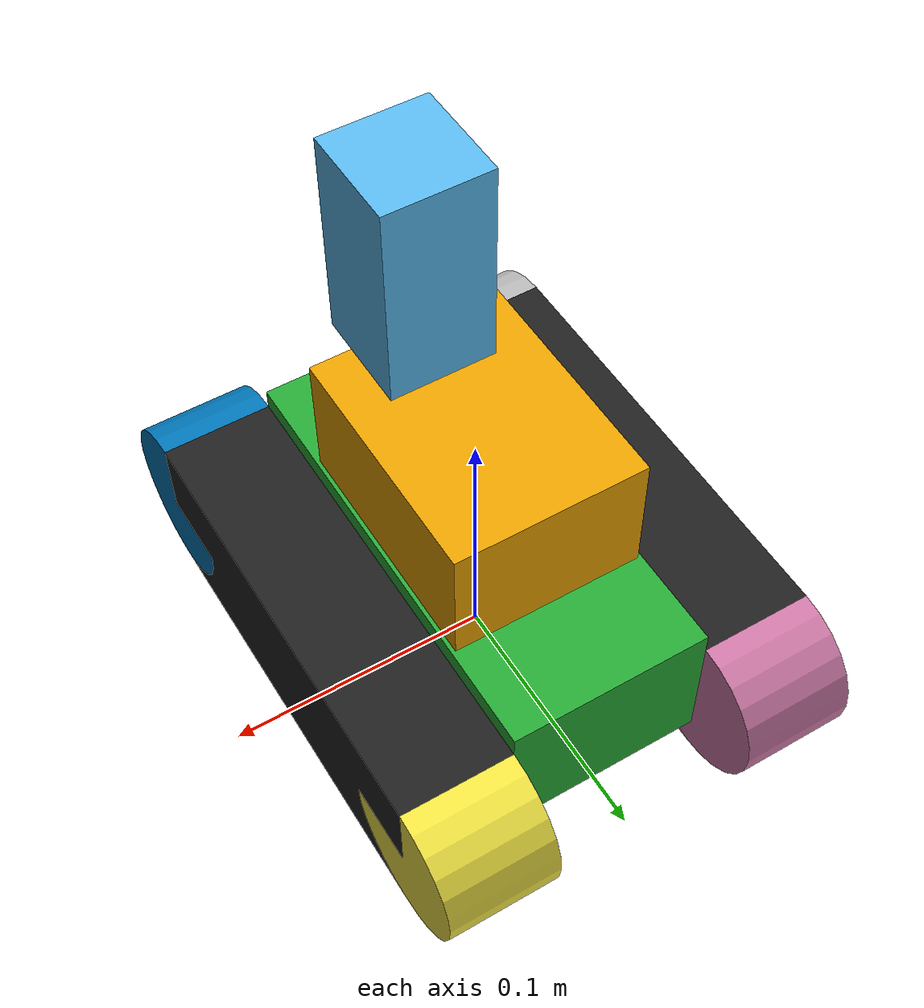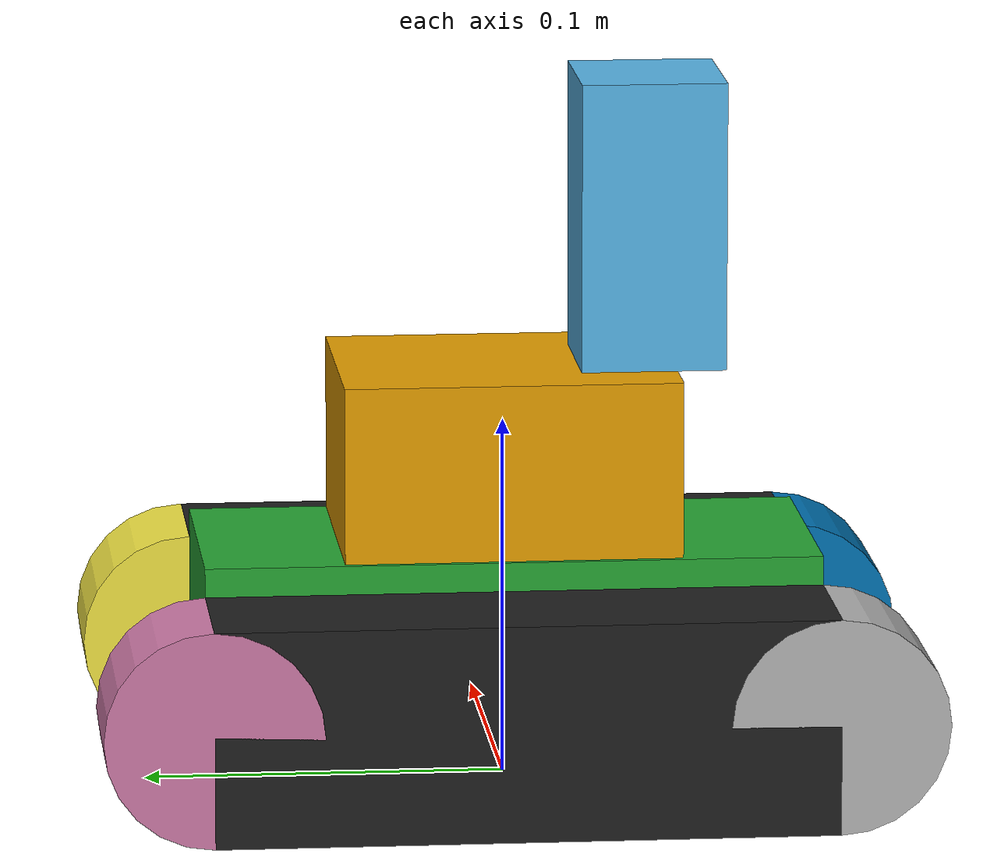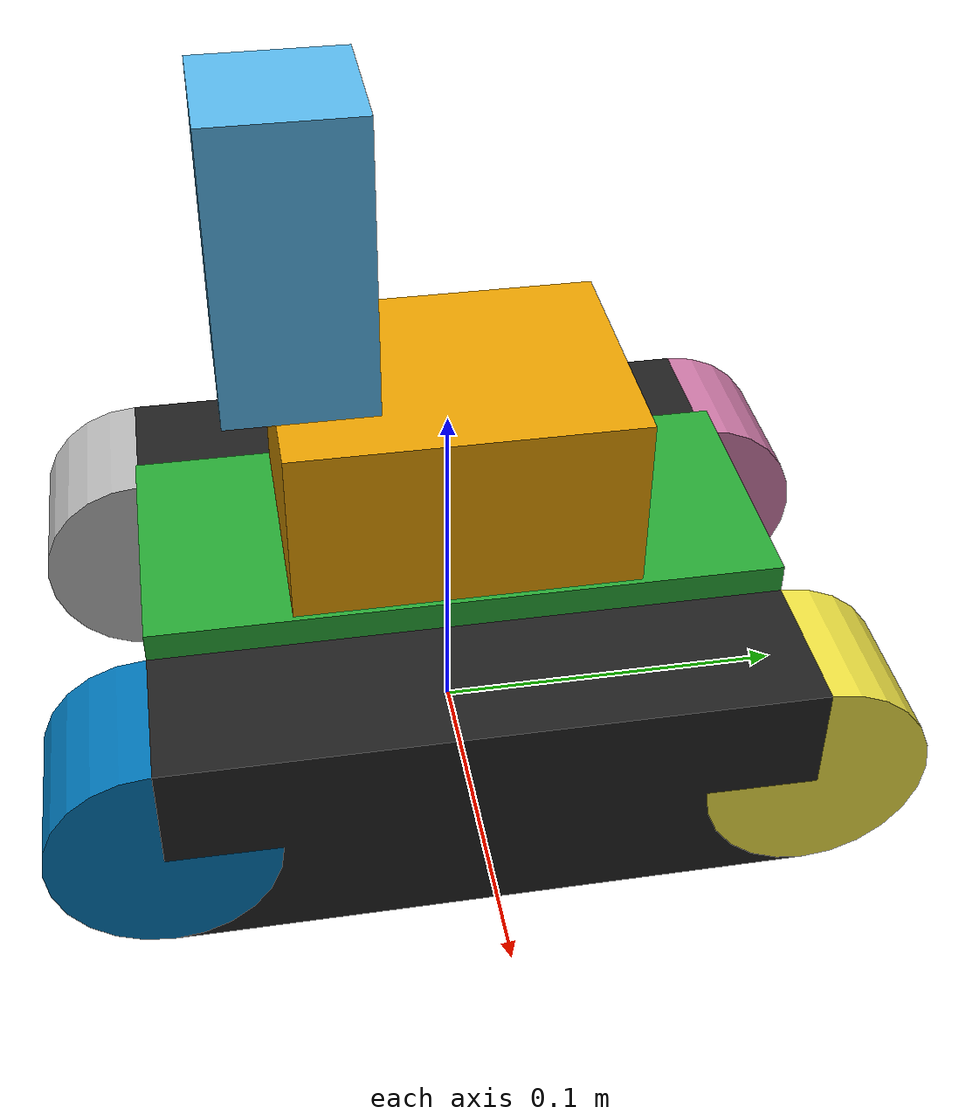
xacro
<?xml version="1.0"?>
<robot
  xmlns:xi         = "http://www.w3.org/2001/XInclude"
  xmlns:xacro      = "http://www.ros.org/wiki/xacro"
 	xmlns:sensor     = "http://playerstage.sourceforge.net/gazebo/xmlschema/#sensor"
  xmlns:controller = "http://playerstage.sourceforge.net/gazebo/xmlschema/#controller"
  xmlns:interface  = "http://playerstage.sourceforge.net/gazebo/xmlschema/#interface"
	name="adeept_rpi_pro">

  <!-- Constants for robot dimensions -->
  <xacro:property name="SCALE"                value="0.001"              />

  <xacro:property name="spacing"              value="${20 * SCALE}"      />

  <xacro:property name="chassis_mass"         value="${1.324 * SCALE}"  /> <!-- Actually full weight of the robot -->
  <xacro:property name="chassis_zlen"       	value="${55 * SCALE}"     /> <!-- 55 mm -->
  <xacro:property name="chassis_offset"       value="${13 * SCALE}"     /> <!-- 13 mm off the ground-->
  <xacro:property name="chassis_ylen"       	value="${170 * SCALE}"    />
  <xacro:property name="chassis_xlen"        	value="${75 * SCALE}"     />

  <xacro:property name="chassis_inertia_xx"   value="${chassis_mass/12.0 * ((chassis_zlen * chassis_zlen) + (chassis_xlen * chassis_xlen))}" />
  <xacro:property name="chassis_inertia_yy"   value="${chassis_mass/12.0 * ((chassis_zlen * chassis_zlen) + (chassis_ylen * chassis_ylen))}" />
  <xacro:property name="chassis_inertia_zz"   value="${chassis_mass/12.0 * ((chassis_xlen * chassis_xlen) + (chassis_ylen * chassis_ylen))}" />

  <xacro:property name="track_mass"           value="${0.200 * SCALE}"  />
  <xacro:property name="track_pad"            value="${10 * SCALE}"     />
  <xacro:property name="track_xlen"          	value="${42 * SCALE}"     />
  <xacro:property name="track_zlen"         	value="${60 * SCALE}"     />
  <xacro:property name="track_ylen"         	value="${chassis_ylen}"   /> <!-- Visually Align this with the chassis -->

  <xacro:property name ="wheel_inertia"       value="${SCALE * 1e-3}" />
  <xacro:property name ="wheel_kp"            value="1000000.0"       />
  <xacro:property name ="wheel_kd"            value="100.0"           />
  <xacro:property name ="wheel_mu1"           value="1"               />
  <xacro:property name ="wheel_mu2"           value="1"               />
  <xacro:property name ="wheel_slip1"         value="0.5"             />
  <xacro:property name ="wheel_slip2"         value="0"               />

  <xacro:property name ="arm_chassis_b_jlen" value="${30 * SCALE}"    />
  <xacro:property name ="arm_chassis_b_off"  value="${0 * SCALE}"     />

  <xacro:property name ="arm_b_mass"         value="${0.1 * SCALE}"   />
  <xacro:property name ="arm_b_xlen"         value="${ 72 * SCALE}"   />
  <xacro:property name ="arm_b_ylen"         value="${ 93 * SCALE}"   />
  <xacro:property name ="arm_b_zlen"         value="${ 62 * SCALE}"   />
  <xacro:property name ="arm_b_inertia_xx"   value="${arm_b_mass/12.0 * ((arm_b_zlen * arm_b_zlen) + (arm_b_xlen * arm_b_xlen))}" />
  <xacro:property name ="arm_b_inertia_yy"   value="${arm_b_mass/12.0 * ((arm_b_zlen * arm_b_zlen) + (arm_b_ylen * arm_b_ylen))}" />
  <xacro:property name ="arm_b_inertia_zz"   value="${arm_b_mass/12.0 * ((arm_b_xlen * arm_b_xlen) + (arm_b_ylen * arm_b_ylen))}" />

  <xacro:property name = "arm_b_l1_jlen"      value="${ 30 * SCALE}"    />
  <xacro:property name = "arm_b_l1_xoff"      value="${  0 * SCALE}"    />
  <xacro:property name = "arm_b_l1_yoff"      value="${-40 * SCALE}"    />
  <xacro:property name = "arm_b_l1_zoff"      value="${  0 * SCALE}"    />

  <!-- L1: mast -->
  <xacro:property name = "arm_l1_mass"        value="${0.05 * SCALE}"  />
  <xacro:property name = "arm_l1_xlen"        value="${40 * SCALE}"    />
  <xacro:property name = "arm_l1_ylen"        value="${40 * SCALE}"    />
  <xacro:property name = "arm_l1_zlen"        value="${80 * SCALE}"    />
  <xacro:property name = "arm_l1_inertia_xx"  value="${arm_l1_mass/12.0 * ((arm_l1_zlen * arm_l1_zlen) + (arm_l1_xlen * arm_l1_xlen))}" />
  <xacro:property name = "arm_l1_inertia_yy"  value="${arm_l1_mass/12.0 * ((arm_l1_zlen * arm_l1_zlen) + (arm_l1_ylen * arm_l1_ylen))}" />
  <xacro:property name = "arm_l1_inertia_zz"  value="${arm_l1_mass/12.0 * ((arm_l1_xlen * arm_l1_xlen) + (arm_l1_ylen * arm_l1_ylen))}" />

  <xacro:property name = "arm_l1_effort"      value="300"               />
  <xacro:property name = "arm_l1_velocity"    value="1"                 />
  <xacro:property name = "arm_l1_lower_limit" value="${-pi/2}"          />
  <xacro:property name = "arm_l1_upper_limit" value="${ pi/2}"          />
  <xacro:property name = "arm_l1_damping"     value="0.1"               />
  <xacro:property name = "arm_l1_friction"    value="1.0"               />

  <xacro:property name = "arm_l1_l2_jlen"     value="${70 * SCALE}"    />
  <!-- From End of L1 -->
  <xacro:property name = "arm_l1_l2_off"      value="${-5 * SCALE}"    />

  <xacro:property name = "arm_l2_mass"        value="${0.05 * SCALE}"  />
  <xacro:property name = "arm_l2_xlen"        value="${55 * SCALE}"    />
  <xacro:property name = "arm_l2_zlen"        value="${30 * SCALE}"    />
  <xacro:property name = "arm_l2_ylen"        value="${145 * SCALE}"   />

  <xacro:property name = "arm_l2_ee_jlen"     value="${122 * SCALE}"   />
  <!-- From End of L2 -->
  <xacro:property name = "arm_l2_ee_off"      value="${0 * SCALE}"     />

  <xacro:property name = "arm_ee_mass"        value="${0.05 * SCALE}"  />
  <xacro:property name = "arm_ee_xlen"        value="${40 * SCALE}"    />
  <xacro:property name = "arm_ee_zlen"        value="${40 * SCALE}"    />
  <xacro:property name = "arm_ee_ylen"        value="${112 * SCALE}"   />

  <xacro:property name="chassis_z_center"  value="${chassis_offset + (chassis_zlen / 2)}"/> <!-- 55 mm -->
  <xacro:property name="track_z_center" value="${track_zlen / 2}"/> <!-- 55 mm -->

  <!-- Import Rviz colors -->
  <xacro:include filename="$(find adeept_pro_tank_ros)/urdf/materials.xacro" />

  <link name="robot_footprint"/>

  <joint name="robot_footprint_joint" type="fixed">
    <origin xyz="0 0 0" rpy="0 0 0"/>
    <parent link="robot_footprint"/>
    <child link="chassis"/>
  </joint>

  <link name='chassis'>
    <inertial>
      <origin xyz="0 0 ${chassis_z_center}" rpy="0 0 0"/>
      <mass value="${chassis_mass}"/>
      <inertia
          ixx="${chassis_inertia_xx}" ixy="0"         ixz="0"
          iyy="${chassis_inertia_yy}" iyz="0"
          izz="${chassis_inertia_zz}"
          />
    </inertial>
    <collision name='chassis_collision'>
      <origin xyz="0 0 ${chassis_z_center}" rpy="0 0 0"/>
      <geometry>
        <box size="${chassis_xlen - spacing} ${chassis_ylen} ${chassis_zlen}"/>
      </geometry>
    </collision>
    <visual name='chassis_visual'>
      <origin xyz="0 0 ${chassis_z_center}" rpy="0 0 0"/>
      <geometry>
        <box size="${chassis_xlen} ${chassis_ylen} ${chassis_zlen}"/>
      </geometry>
    </visual>
    <self_collide>0</self_collide>
  </link>

  <joint name='left_track_joint' type='fixed'>
    <parent link="chassis"/>
    <child link="left_track"/>
    <origin xyz="${(chassis_xlen / 2) + (track_xlen / 2)} 0 ${track_z_center}" rpy="0 0 0"/>
    <axis xyz = "0 1 0"/>
  </joint>

  <link name='left_track'>
    <inertial>
      <origin xyz="0 0 0" rpy="0 0 0"/>
      <mass value="${track_mass}"/>
      <inertia
        ixx="0" ixy="0"         ixz="0"
        iyy="0" iyz="0"
        izz="0"
        />
    </inertial>

    <visual name='visual'>
      <origin xyz="0 0 0" rpy="0 0 0"/>
      <geometry>
        <box size="${track_xlen} ${track_ylen} ${track_zlen}"/>
      </geometry>
    </visual>

    <self_collide>0</self_collide>
  </link>

  <joint name='left_track_fwheel_jnt' type='continuous'>
    <parent link="left_track"/>
    <child link="left_track_fwheel"/>
    <origin xyz="0 ${track_ylen / 2} 0" rpy="0 0 0"/>
    <axis xyz = "1 0 0"/>
    <limit effort="10000" velocity="1000"/>
    <joint_properties damping="1.0" friction="1.0"/>
  </joint>

  <link name='left_track_fwheel'>
    <inertial>
      <origin xyz="0 0 0" rpy="0 1.5707 0"/>
      <mass value="${track_mass}"/>
      <inertia
          ixx="${wheel_inertia}" ixy="0" ixz="0"
          iyy="${wheel_inertia}" iyz="0"
          izz="${wheel_inertia}"
          />
    </inertial>
    <visual name='visual'>
      <origin xyz="0 0 0" rpy="0 1.5707 0"/>
      <geometry>
        <cylinder length="${track_xlen}" radius="${track_zlen / 2}"/>
      </geometry>
    </visual>
    <collision name='collision'>
      <origin xyz="0 0 0" rpy="0 1.5707 0"/>
      <geometry>
        <cylinder length="${track_xlen}" radius="${track_zlen / 2}"/>
      </geometry>
      <surface>
        <friction>
          <fdir1>1 0 0</fdir1>
          <kp>${wheel_kp}</kp> <!-- kp and kd for rubber -->
          <kd>${wheel_kd}</kd>
          <mu>${wheel_mu1}</mu>
          <mu2>${wheel_mu2}</mu2>
          <slip1>${wheel_slip1}</slip1>
          <slip2>${wheel_slip2}</slip2>
        </friction>
      </surface>
    </collision>
    <self_collide>0</self_collide>
  </link>

  <joint name='left_track_rwheel_jnt' type='continuous'>
    <parent link="left_track"/>
    <child link="left_track_rwheel"/>
    <origin xyz="0 ${-(track_ylen / 2)} 0" rpy="0 0 0"/>
    <axis xyz = "1 0 0"/>
    <limit effort="10000" velocity="1000"/>
    <joint_properties damping="1.0" friction="1.0"/>
  </joint>

  <link name="left_track_rwheel">
    <inertial>
      <mass value="${track_mass}"/>
      <origin xyz="0 0 0" rpy="0 1.5707 0"/>
      <inertia
          ixx="${wheel_inertia}" ixy="0" ixz="0"
          iyy="${wheel_inertia}" iyz="0"
          izz="${wheel_inertia}"
          />
    </inertial>
    <visual name='visual'>
      <origin xyz="0 0 0" rpy="0 1.5707 0"/>
      <geometry>
        <cylinder length="${track_xlen}" radius="${track_zlen / 2}"/>
      </geometry>
    </visual>
    <collision name='collision'>
      <origin xyz="0 0 0" rpy="0 1.5707 0"/>
      <geometry>
        <cylinder length="${track_xlen}" radius="${track_zlen / 2}"/>
      </geometry>
      <surface>
        <friction>
          <fdir1>0 1 0</fdir1>
          <kp>${wheel_kp}</kp> <!-- kp and kd for rubber -->
          <kd>${wheel_kd}</kd>
          <mu>${wheel_mu1}</mu>
          <mu2>${wheel_mu2}</mu2>
          <slip1>${wheel_slip1}</slip1>
          <slip2>${wheel_slip2}</slip2>
        </friction>
      </surface>
    </collision>
    <self_collide>0</self_collide>
  </link>

  <joint name='right_track_joint' type='fixed'>
    <parent link="chassis"/>
    <child link="right_track"/>
    <origin xyz="${-((chassis_xlen / 2) + (track_xlen / 2))} 0 ${track_z_center}" rpy="0 0 0"/>
    <axis xyz="0 1 0"/>
  </joint>

  <link name='right_track'>
    <inertial>
      <origin xyz="0 0 0" rpy="0 0 0"/>
      <mass value="${track_mass}"/>
      <inertia
          ixx="${track_mass / 12.0 * (track_xlen * track_xlen   + track_ylen * track_ylen)}" ixy="0"         ixz="0"
          iyy="${track_mass / 12.0 * (track_xlen * track_xlen   + track_zlen * track_zlen)}" iyz="0"
          izz="${track_mass / 12.0 * (track_zlen * track_zlen + track_ylen * track_ylen)}"
          />
    </inertial>

    <visual name='visual'>
      <origin xyz="0 0 0" rpy="0 0 0"/>
      <geometry>
        <box size="${track_xlen} ${track_ylen} ${track_zlen}"/>
      </geometry>
    </visual>
    <self_collide>0</self_collide>
  </link>

  <joint name='right_track_fwheel_jnt' type='continuous'>
    <parent link="right_track"/>
    <child link="right_track_fwheel"/>
    <origin xyz="0 ${track_ylen / 2} 0" rpy="0 0 0"/>
    <axis xyz = "1 0 0"/>
    <limit effort="10000" velocity="1000"/>
    <joint_properties damping="1.0" friction="1.0"/>
  </joint>

  <link name='right_track_fwheel'>
    <inertial>
      <origin xyz="0 0 0" rpy="0 1.5707 0"/>
      <mass value="${track_mass}"/>
      <inertia
          ixx="${wheel_inertia}" ixy="0" ixz="0"
          iyy="${wheel_inertia}" iyz="0"
          izz="${wheel_inertia}"
          />
    </inertial>
    <visual name='visual'>
      <origin xyz="0 0 0" rpy="0 1.5707 0"/>
      <geometry>
        <cylinder length="${track_xlen}" radius="${track_zlen / 2}"/>
      </geometry>
    </visual>
    <collision name='collision'>
      <origin xyz="0 0 0" rpy="0 1.5707 0"/>
      <geometry>
        <cylinder length="${track_xlen}" radius="${track_zlen / 2}"/>
      </geometry>
      <surface>
        <friction>
          <fdir1>1 0 0</fdir1>
          <kp>${wheel_kp}</kp> <!-- kp and kd for rubber -->
          <kd>${wheel_kd}</kd>
          <mu>${wheel_mu1}</mu>
          <mu2>${wheel_mu2}</mu2>
          <slip1>${wheel_slip1}</slip1>
          <slip2>${wheel_slip2}</slip2>
        </friction>
      </surface>
    </collision>
    <self_collide>0</self_collide>
  </link>

  <joint name='right_track_rwheel_jnt' type='continuous'>
    <parent link="right_track"/>
    <child link="right_track_rwheel"/>
    <origin xyz="0 ${-(track_ylen / 2)} 0" rpy="0 0 0"/>
    <axis xyz = "1 0 0"/>
    <limit effort="10000" velocity="1000"/>
    <joint_properties damping="1.0" friction="1.0"/>
  </joint>

  <link name="right_track_rwheel">
    <inertial>
      <origin xyz="0 0 0" rpy="0 1.5707 0"/>
      <mass value="${track_mass}"/>
      <inertia
          ixx="${wheel_inertia}" ixy="0" ixz="0"
          iyy="${wheel_inertia}" iyz="0"
          izz="${wheel_inertia}"
          />
    </inertial>
    <visual name='visual'>
      <origin xyz="0 0 0" rpy="0 1.5707 0"/>
      <geometry>
        <cylinder length="${track_xlen}" radius="${track_zlen / 2}"/>
      </geometry>
    </visual>
    <collision name='collision'>
      <origin xyz="0 0 0" rpy="0 1.5707 0"/>
      <geometry>
        <cylinder length="${track_xlen}" radius="${track_zlen / 2}"/>
      </geometry>
      <surface>
        <friction>
          <fdir1>1 0 0</fdir1>
          <kp>${wheel_kp}</kp> <!-- kp and kd for rubber -->
          <kd>${wheel_kd}</kd>
          <mu>${wheel_mu1}</mu>
          <mu2>${wheel_mu2}</mu2>
          <slip1>${wheel_slip1}</slip1>
          <slip2>${wheel_slip2}</slip2>
        </friction>
      </surface>
    </collision>
    <self_collide>0</self_collide>
  </link>

  <!-- ARM -->
  <joint name="arm_base_joint" type="fixed">
    <origin xyz="0 0 ${chassis_zlen}" rpy="0 0 0"/>
    <parent link="chassis"/>
    <child  link="arm_base"/>
  </joint>

  <link name='arm_base'>
    <inertial>
      <mass value="${arm_b_mass}"/>
      <origin xyz="0 0 ${arm_b_zlen / 2}" rpy="0 0 0"/>
      <inertia
          ixx="${arm_b_inertia_xx}" ixy="0"         ixz="0"
          iyy="${arm_b_inertia_yy}" iyz="0"
          izz="${arm_b_inertia_zz}"
          />
    </inertial>
    <visual>
      <origin xyz="0 0 ${arm_b_zlen / 2}" rpy="0 0 0"/>
      <geometry>
        <box size="${arm_b_xlen} ${arm_b_ylen} ${arm_b_zlen}"/>
      </geometry>
    </visual>
    <collision>
      <origin xyz="0 0 ${arm_b_zlen / 2}" rpy="0 0 0"/>
      <geometry>
        <box size="${arm_b_xlen} ${arm_b_ylen} ${arm_b_zlen}"/>
      </geometry>
    </collision>
    <self_collide>0</self_collide>
  </link>

  <joint name="arm_b_l1_joint" type="revolute">
    <parent link="arm_base"/>
    <child  link="arm_l1"/>
    <origin xyz="${arm_b_l1_xoff} ${arm_b_l1_yoff} ${arm_b_zlen + arm_b_l1_zoff}" rpy="0 0 0"/>
    <axis xyz = "0 0 1"/>
    <limit effort="${arm_l1_effort}" velocity="${arm_l1_velocity}" lower="${arm_l1_lower_limit}" upper="${arm_l1_upper_limit}"/>
    <dynamics damping="${arm_l1_damping}" friction="${arm_l1_friction}"/>
  </joint>

  <link name='arm_l1'>
    <inertial>
      <mass value="${arm_l1_mass}"/>
      <origin xyz="0 0 ${(arm_l1_zlen / 2)}" rpy="0 0 0"/>
      <inertia
          ixx="${arm_l1_inertia_xx}" ixy="0"         ixz="0"
          iyy="${arm_l1_inertia_yy}" iyz="0"
          izz="${arm_l1_inertia_zz}"
          />
    </inertial>
    <visual>
      <origin xyz="0 0 ${(arm_l1_zlen / 2)}" rpy="0 0 0"/>
      <geometry>
        <box size="${arm_l1_xlen} ${arm_l1_ylen} ${arm_l1_zlen}"/>
      </geometry>
    </visual>
    <collision>
      <origin xyz="0 0 ${(arm_l1_zlen / 2)}" rpy="0 0 0"/>
      <geometry>
        <box size="${arm_l1_xlen} ${arm_l1_ylen} ${arm_l1_zlen}"/>
      </geometry>
    </collision>
    <self_collide>0</self_collide>
  </link>

  <transmission name="arm_l1_trans">
    <type>transmission_interface/SimpleTransmission</type>
    <joint name="arm_b_l1_joint">
      <hardwareInterface>hardware_interface/PositionJointInterface</hardwareInterface>
    </joint>
    <actuator name="arm_l1_actuator">
      <hardwareInterface>hardware_interface/PositionJointInterface</hardwareInterface>
      <mechanicalReduction>1</mechanicalReduction>
    </actuator>
  </transmission>

	<gazebo>
		<plugin name="gazebo_ros_control" filename="libgazebo_ros_control.so">
			<robotNamespace>/adeept_rpi_pro</robotNamespace>
      <robotSimType>gazebo_ros_control/DefaultRobotHWSim</robotSimType>
		</plugin>
	</gazebo>

  <gazebo reference="chassis">
    <material>Gazebo/Green</material>
  </gazebo>

  <gazebo reference="left_track">
    <material>Gazebo/Black</material>
  </gazebo>

  <gazebo reference="right_track">
    <material>Gazebo/Black</material>
  </gazebo>

</robot>
